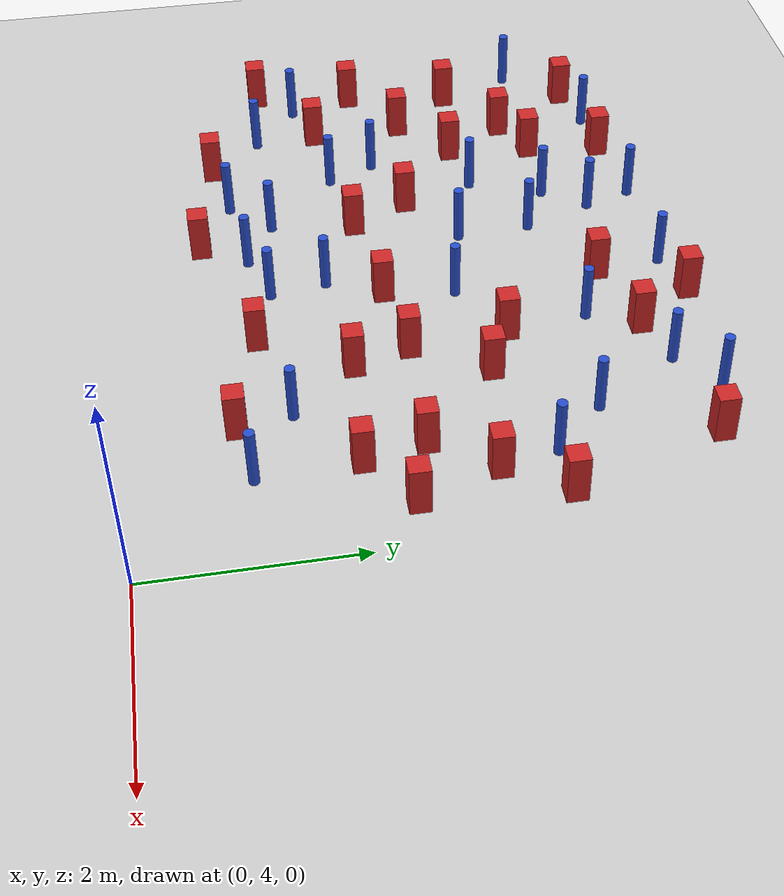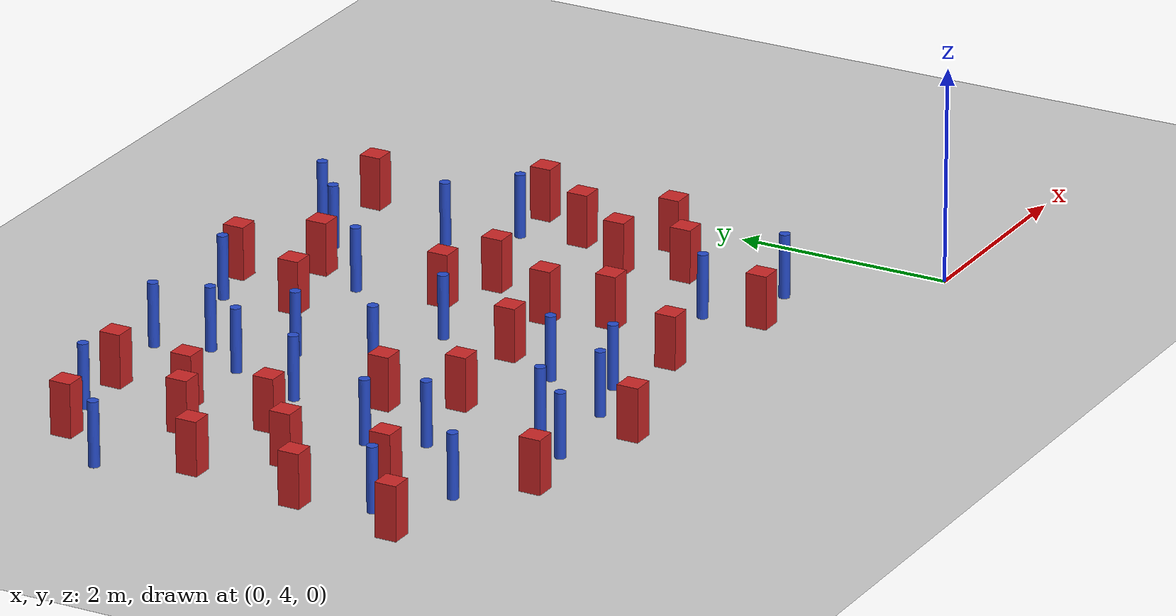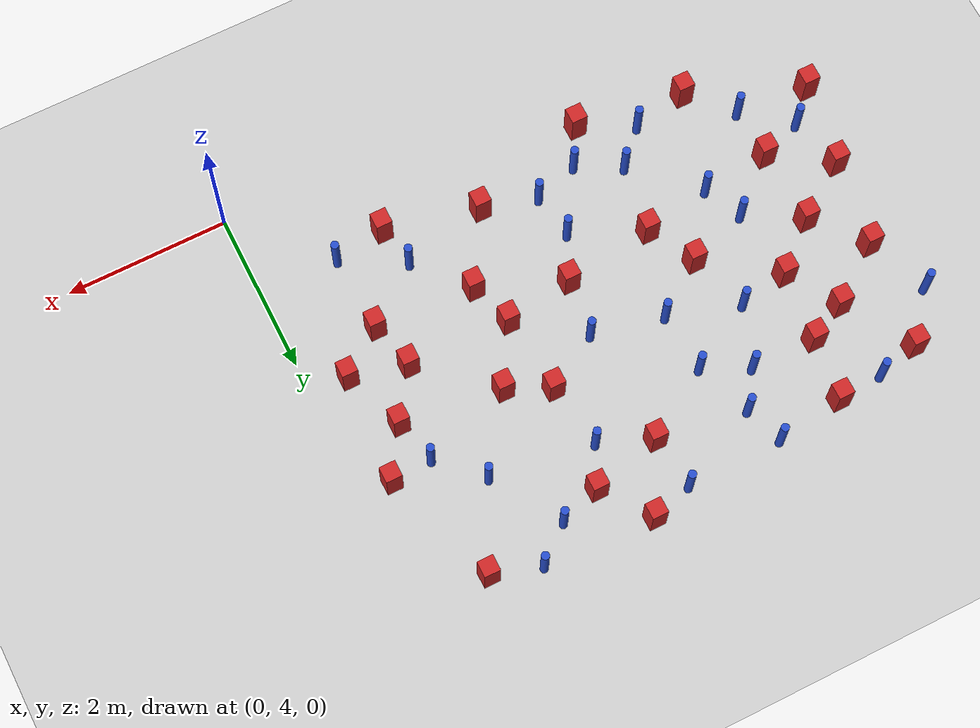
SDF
<sdf version="1.6">
 <world name="default">
  <model name="ground_plane">
   <static>1</static>
   <link name="link">
    <collision name="collision">
     <geometry><plane><normal>0 0 1</normal><size>100 100</size></plane></geometry>
     <surface><friction><ode><mu>100</mu><mu2>50</mu2></ode></friction></surface>
    </collision>
    <visual name="visual">
     <cast_shadows>0</cast_shadows>
     <geometry><plane><normal>0 0 1</normal><size>100 100</size></plane></geometry>
     <material>
      <ambient>1.0 1.0 1.0 1.0</ambient>
      <diffuse>0.8 0.8 0.8 1.0</diffuse>
      <specular>0.01 0.01 0.01 1.000000</specular>
     </material>
    </visual>
   </link>
  </model>
  <model name="pole_obstacle0">
   <static>true</static>
   <pose>-4.96490383653 7.69837994654 2.88873142074e-08 -9.90536690842e-09 4.60219948965e-07 -1.20965994976e-07</pose>
   <link name="link">
    <pose>0 0 0.3 0 -0 0</pose>
    <inertial>
     <mass>1</mass>
     <inertia><ixx>0.145833</ixx><ixy>0</ixy><ixz>0</ixz><iyy>0.145833</iyy><iyz>0</iyz><izz>0.125</izz></inertia>
    </inertial>
    <collision name="collision">
     <geometry><cylinder><radius>0.05</radius><length>.6</length></cylinder></geometry>
    </collision>
    <visual name="visual">
     <geometry><cylinder><radius>0.05</radius><length>.6</length></cylinder></geometry>
     <material>
      <script><name>Gazebo/Blue</name><uri>file://media/materials/scripts/gazebo.material</uri></script>
     </material>
    </visual>
   </link>
  </model>
  <model name="pole_obstacle5">
   <static>true</static>
   <pose>-2.64452095328 8.42757156538 2.88873142074e-08 -9.90536692318e-09 4.6021994893e-07 -1.20965994988e-07</pose>
   <link name="link">
    <pose>0 0 0.3 0 -0 0</pose>
    <inertial>
     <mass>1</mass>
     <inertia><ixx>0.145833</ixx><ixy>0</ixy><ixz>0</ixz><iyy>0.145833</iyy><iyz>0</iyz><izz>0.125</izz></inertia>
    </inertial>
    <collision name="collision">
     <geometry><cylinder><radius>0.05</radius><length>.6</length></cylinder></geometry>
    </collision>
    <visual name="visual">
     <geometry><cylinder><radius>0.05</radius><length>.6</length></cylinder></geometry>
     <material>
      <script><name>Gazebo/Blue</name><uri>file://media/materials/scripts/gazebo.material</uri></script>
     </material>
    </visual>
   </link>
  </model>
  <model name="pole_obstacle9">
   <static>true</static>
   <pose>-4.39131936763 8.86157578346 2.88873142074e-08 -9.9053668967e-09 4.60219948993e-07 -1.20965994957e-07</pose>
   <link name="link">
    <pose>0 0 0.3 0 -0 0</pose>
    <inertial>
     <mass>1</mass>
     <inertia><ixx>0.145833</ixx><ixy>0</ixy><ixz>0</ixz><iyy>0.145833</iyy><iyz>0</iyz><izz>0.125</izz></inertia>
    </inertial>
    <collision name="collision">
     <geometry><cylinder><radius>0.05</radius><length>.6</length></cylinder></geometry>
    </collision>
    <visual name="visual">
     <geometry><cylinder><radius>0.05</radius><length>.6</length></cylinder></geometry>
     <material>
      <script><name>Gazebo/Blue</name><uri>file://media/materials/scripts/gazebo.material</uri></script>
     </material>
    </visual>
   </link>
  </model>
  <model name="pole_obstacle10">
   <static>true</static>
   <pose>-4.55130574229 9.33956360959 2.88873142074e-08 -9.9053668967e-09 4.60219948993e-07 -1.20965994957e-07</pose>
   <link name="link">
    <pose>0 0 0.3 0 -0 0</pose>
    <inertial>
     <mass>1</mass>
     <inertia><ixx>0.145833</ixx><ixy>0</ixy><ixz>0</ixz><iyy>0.145833</iyy><iyz>0</iyz><izz>0.125</izz></inertia>
    </inertial>
    <collision name="collision">
     <geometry><cylinder><radius>0.05</radius><length>.6</length></cylinder></geometry>
    </collision>
    <visual name="visual">
     <geometry><cylinder><radius>0.05</radius><length>.6</length></cylinder></geometry>
     <material>
      <script><name>Gazebo/Blue</name><uri>file://media/materials/scripts/gazebo.material</uri></script>
     </material>
    </visual>
   </link>
  </model>
  <model name="square_post_obstacle10">
   <static>true</static>
   <pose>-5.60839444574 4.99346010621 8.22691968438e-08 7.22125133819e-06 -7.54495500217e-07 2.29674213826e-05</pose>
   <link name="link">
    <pose>0 0 0.25 0 -0 0</pose>
    <inertial>
     <mass>100</mass>
     <inertia>
      <ixx>0.166667</ixx>
      <ixy>0</ixy>
      <ixz>0</ixz>
      <iyy>0.166667</iyy>
      <iyz>0</iyz>
      <izz>0.166667</izz>
     </inertia>
    </inertial>
    <collision name="collision"><geometry><box><size>.2 .2 .5</size></box></geometry></collision>
    <visual name="visual">
     <geometry><box><size>.2 .2 .5</size></box></geometry>
     <material>
      <script><name>Gazebo/Red</name><uri>file://media/materials/scripts/gazebo.material</uri></script>
     </material>
    </visual>
   </link>
  </model>
  <model name="square_post_obstacle13">
   <static>true</static>
   <pose>-2.25063766883 6.10697820428 8.22691968438e-08 7.2212513382e-06 -7.54495500217e-07 2.29674213826e-05</pose>
   <link name="link">
    <pose>0 0 0.25 0 -0 0</pose>
    <inertial>
     <mass>100</mass>
     <inertia>
      <ixx>0.166667</ixx>
      <ixy>0</ixy>
      <ixz>0</ixz>
      <iyy>0.166667</iyy>
      <iyz>0</iyz>
      <izz>0.166667</izz>
     </inertia>
    </inertial>
    <collision name="collision"><geometry><box><size>.2 .2 .5</size></box></geometry></collision>
    <visual name="visual">
     <geometry><box><size>.2 .2 .5</size></box></geometry>
     <material>
      <script><name>Gazebo/Red</name><uri>file://media/materials/scripts/gazebo.material</uri></script>
     </material>
    </visual>
   </link>
  </model>
  <model name="square_post_obstacle16">
   <static>true</static>
   <pose>-5.9660888704 8.1992055869 8.22691968438e-08 7.22125133819e-06 -7.54495500217e-07 2.29674213826e-05</pose>
   <link name="link">
    <pose>0 0 0.25 0 -0 0</pose>
    <inertial>
     <mass>100</mass>
     <inertia>
      <ixx>0.166667</ixx>
      <ixy>0</ixy>
      <ixz>0</ixz>
      <iyy>0.166667</iyy>
      <iyz>0</iyz>
      <izz>0.166667</izz>
     </inertia>
    </inertial>
    <collision name="collision"><geometry><box><size>.2 .2 .5</size></box></geometry></collision>
    <visual name="visual">
     <geometry><box><size>.2 .2 .5</size></box></geometry>
     <material>
      <script><name>Gazebo/Red</name><uri>file://media/materials/scripts/gazebo.material</uri></script>
     </material>
    </visual>
   </link>
  </model>
  <model name="square_post_obstacle18">
   <static>true</static>
   <pose>-2.84131001033 9.49645642191 8.22691968438e-08 7.22125133819e-06 -7.54495500217e-07 2.29674213826e-05</pose>
   <link name="link">
    <pose>0 0 0.25 0 -0 0</pose>
    <inertial>
     <mass>100</mass>
     <inertia>
      <ixx>0.166667</ixx>
      <ixy>0</ixy>
      <ixz>0</ixz>
      <iyy>0.166667</iyy>
      <iyz>0</iyz>
      <izz>0.166667</izz>
     </inertia>
    </inertial>
    <collision name="collision"><geometry><box><size>.2 .2 .5</size></box></geometry></collision>
    <visual name="visual">
     <geometry><box><size>.2 .2 .5</size></box></geometry>
     <material>
      <script><name>Gazebo/Red</name><uri>file://media/materials/scripts/gazebo.material</uri></script>
     </material>
    </visual>
   </link>
  </model>
  <model name="pole_obstacle27">
   <static>true</static>
   <pose>-4.93310449654 5.12727231095 2.88873142074e-08 -9.90536690842e-09 4.60219948965e-07 -1.20965994976e-07</pose>
   <link name="link">
    <pose>0 0 0.3 0 -0 0</pose>
    <inertial>
     <mass>1</mass>
     <inertia><ixx>0.145833</ixx><ixy>0</ixy><ixz>0</ixz><iyy>0.145833</iyy><iyz>0</iyz><izz>0.125</izz></inertia>
    </inertial>
    <collision name="collision">
     <geometry><cylinder><radius>0.05</radius><length>.6</length></cylinder></geometry>
    </collision>
    <visual name="visual">
     <geometry><cylinder><radius>0.05</radius><length>.6</length></cylinder></geometry>
     <material>
      <script><name>Gazebo/Blue</name><uri>file://media/materials/scripts/gazebo.material</uri></script>
     </material>
    </visual>
   </link>
  </model>
  <model name="square_post_obstacle29">
   <static>true</static>
   <pose>-2.00035305223 7.37510239449 8.22691968438e-08 7.22125133819e-06 -7.54495500217e-07 2.29674213826e-05</pose>
   <link name="link">
    <pose>0 0 0.25 0 -0 0</pose>
    <inertial>
     <mass>100</mass>
     <inertia>
      <ixx>0.166667</ixx>
      <ixy>0</ixy>
      <ixz>0</ixz>
      <iyy>0.166667</iyy>
      <iyz>0</iyz>
      <izz>0.166667</izz>
     </inertia>
    </inertial>
    <collision name="collision"><geometry><box><size>.2 .2 .5</size></box></geometry></collision>
    <visual name="visual">
     <geometry><box><size>.2 .2 .5</size></box></geometry>
     <material>
      <script><name>Gazebo/Red</name><uri>file://media/materials/scripts/gazebo.material</uri></script>
     </material>
    </visual>
   </link>
  </model>
  <model name="square_post_obstacle33">
   <static>true</static>
   <pose>-3.27928689094 8.6859620101 8.22691968438e-08 7.2212513382e-06 -7.54495500217e-07 2.29674213826e-05</pose>
   <link name="link">
    <pose>0 0 0.25 0 -0 0</pose>
    <inertial>
     <mass>100</mass>
     <inertia>
      <ixx>0.166667</ixx>
      <ixy>0</ixy>
      <ixz>0</ixz>
      <iyy>0.166667</iyy>
      <iyz>0</iyz>
      <izz>0.166667</izz>
     </inertia>
    </inertial>
    <collision name="collision"><geometry><box><size>.2 .2 .5</size></box></geometry></collision>
    <visual name="visual">
     <geometry><box><size>.2 .2 .5</size></box></geometry>
     <material>
      <script><name>Gazebo/Red</name><uri>file://media/materials/scripts/gazebo.material</uri></script>
     </material>
    </visual>
   </link>
  </model>
  <model name="pole_obstacle43">
   <static>true</static>
   <pose>-4.00764167624 5.25091666088 2.88873142074e-08 -9.90536691069e-09 4.6021994896e-07 -1.20965994979e-07</pose>
   <link name="link">
    <pose>0 0 0.3 0 -0 0</pose>
    <inertial>
     <mass>1</mass>
     <inertia><ixx>0.145833</ixx><ixy>0</ixy><ixz>0</ixz><iyy>0.145833</iyy><iyz>0</iyz><izz>0.125</izz></inertia>
    </inertial>
    <collision name="collision">
     <geometry><cylinder><radius>0.05</radius><length>.6</length></cylinder></geometry>
    </collision>
    <visual name="visual">
     <geometry><cylinder><radius>0.05</radius><length>.6</length></cylinder></geometry>
     <material>
      <script><name>Gazebo/Blue</name><uri>file://media/materials/scripts/gazebo.material</uri></script>
     </material>
    </visual>
   </link>
  </model>
  <model name="pole_obstacle44">
   <static>true</static>
   <pose>-4.08551487643 7.42501927602 2.88873142074e-08 -9.90536690842e-09 4.60219948965e-07 -1.20965994976e-07</pose>
   <link name="link">
    <pose>0 0 0.3 0 -0 0</pose>
    <inertial>
     <mass>1</mass>
     <inertia><ixx>0.145833</ixx><ixy>0</ixy><ixz>0</ixz><iyy>0.145833</iyy><iyz>0</iyz><izz>0.125</izz></inertia>
    </inertial>
    <collision name="collision">
     <geometry><cylinder><radius>0.05</radius><length>.6</length></cylinder></geometry>
    </collision>
    <visual name="visual">
     <geometry><cylinder><radius>0.05</radius><length>.6</length></cylinder></geometry>
     <material>
      <script><name>Gazebo/Blue</name><uri>file://media/materials/scripts/gazebo.material</uri></script>
     </material>
    </visual>
   </link>
  </model>
  <model name="pole_obstacle45">
   <static>true</static>
   <pose>-4.68761905059 8.43181110242 2.88873142074e-08 -9.9053668967e-09 4.60219948993e-07 -1.20965994957e-07</pose>
   <link name="link">
    <pose>0 0 0.3 0 -0 0</pose>
    <inertial>
     <mass>1</mass>
     <inertia><ixx>0.145833</ixx><ixy>0</ixy><ixz>0</ixz><iyy>0.145833</iyy><iyz>0</iyz><izz>0.125</izz></inertia>
    </inertial>
    <collision name="collision">
     <geometry><cylinder><radius>0.05</radius><length>.6</length></cylinder></geometry>
    </collision>
    <visual name="visual">
     <geometry><cylinder><radius>0.05</radius><length>.6</length></cylinder></geometry>
     <material>
      <script><name>Gazebo/Blue</name><uri>file://media/materials/scripts/gazebo.material</uri></script>
     </material>
    </visual>
   </link>
  </model>
  <model name="square_post_obstacle37">
   <static>true</static>
   <pose>-2.52180636206 7.6234951903 8.22691968438e-08 7.2212513382e-06 -7.54495500217e-07 2.29674213826e-05</pose>
   <link name="link">
    <pose>0 0 0.25 0 -0 0</pose>
    <inertial>
     <mass>100</mass>
     <inertia>
      <ixx>0.166667</ixx>
      <ixy>0</ixy>
      <ixz>0</ixz>
      <iyy>0.166667</iyy>
      <iyz>0</iyz>
      <izz>0.166667</izz>
     </inertia>
    </inertial>
    <collision name="collision"><geometry><box><size>.2 .2 .5</size></box></geometry></collision>
    <visual name="visual">
     <geometry><box><size>.2 .2 .5</size></box></geometry>
     <material>
      <script><name>Gazebo/Red</name><uri>file://media/materials/scripts/gazebo.material</uri></script>
     </material>
    </visual>
   </link>
  </model>
  <model name="square_post_obstacle38">
   <static>true</static>
   <pose>-6.14481013797 7.08315656612 8.22691968438e-08 7.2212513382e-06 -7.54495500217e-07 2.29674213826e-05</pose>
   <link name="link">
    <pose>0 0 0.25 0 -0 0</pose>
    <inertial>
     <mass>100</mass>
     <inertia>
      <ixx>0.166667</ixx>
      <ixy>0</ixy>
      <ixz>0</ixz>
      <iyy>0.166667</iyy>
      <iyz>0</iyz>
      <izz>0.166667</izz>
     </inertia>
    </inertial>
    <collision name="collision"><geometry><box><size>.2 .2 .5</size></box></geometry></collision>
    <visual name="visual">
     <geometry><box><size>.2 .2 .5</size></box></geometry>
     <material>
      <script><name>Gazebo/Red</name><uri>file://media/materials/scripts/gazebo.material</uri></script>
     </material>
    </visual>
   </link>
  </model>
  <model name="pole_obstacle51">
   <static>true</static>
   <pose>-6.65193842053 5.95494044925 2.88873142074e-08 -9.90536690842e-09 4.60219948965e-07 -1.20965994976e-07</pose>
   <link name="link">
    <pose>0 0 0.3 0 -0 0</pose>
    <inertial>
     <mass>1</mass>
     <inertia><ixx>0.145833</ixx><ixy>0</ixy><ixz>0</ixz><iyy>0.145833</iyy><iyz>0</iyz><izz>0.125</izz></inertia>
    </inertial>
    <collision name="collision">
     <geometry><cylinder><radius>0.05</radius><length>.6</length></cylinder></geometry>
    </collision>
    <visual name="visual">
     <geometry><cylinder><radius>0.05</radius><length>.6</length></cylinder></geometry>
     <material>
      <script><name>Gazebo/Blue</name><uri>file://media/materials/scripts/gazebo.material</uri></script>
     </material>
    </visual>
   </link>
  </model>
  <model name="square_post_obstacle46">
   <static>true</static>
   <pose>-1.15602615086 6.6222957486 8.22691968438e-08 7.2212513382e-06 -7.54495500217e-07 2.29674213826e-05</pose>
   <link name="link">
    <pose>0 0 0.25 0 -0 0</pose>
    <inertial>
     <mass>100</mass>
     <inertia>
      <ixx>0.166667</ixx>
      <ixy>0</ixy>
      <ixz>0</ixz>
      <iyy>0.166667</iyy>
      <iyz>0</iyz>
      <izz>0.166667</izz>
     </inertia>
    </inertial>
    <collision name="collision"><geometry><box><size>.2 .2 .5</size></box></geometry></collision>
    <visual name="visual">
     <geometry><box><size>.2 .2 .5</size></box></geometry>
     <material>
      <script><name>Gazebo/Red</name><uri>file://media/materials/scripts/gazebo.material</uri></script>
     </material>
    </visual>
   </link>
  </model>
  <model name="square_post_obstacle53">
   <static>true</static>
   <pose>-0.373238762275 7.78887959573 8.22691968438e-08 7.22125133819e-06 -7.54495500217e-07 2.29674213826e-05</pose>
   <link name="link">
    <pose>0 0 0.25 0 -0 0</pose>
    <inertial>
     <mass>100</mass>
     <inertia>
      <ixx>0.166667</ixx>
      <ixy>0</ixy>
      <ixz>0</ixz>
      <iyy>0.166667</iyy>
      <iyz>0</iyz>
      <izz>0.166667</izz>
     </inertia>
    </inertial>
    <collision name="collision"><geometry><box><size>.2 .2 .5</size></box></geometry></collision>
    <visual name="visual">
     <geometry><box><size>.2 .2 .5</size></box></geometry>
     <material>
      <script><name>Gazebo/Red</name><uri>file://media/materials/scripts/gazebo.material</uri></script>
     </material>
    </visual>
   </link>
  </model>
  <model name="square_post_obstacle56">
   <static>true</static>
   <pose>-6.656817711 7.69067604971 8.22691968438e-08 7.2212513382e-06 -7.54495500217e-07 2.29674213826e-05</pose>
   <link name="link">
    <pose>0 0 0.25 0 -0 0</pose>
    <inertial>
     <mass>100</mass>
     <inertia>
      <ixx>0.166667</ixx>
      <ixy>0</ixy>
      <ixz>0</ixz>
      <iyy>0.166667</iyy>
      <iyz>0</iyz>
      <izz>0.166667</izz>
     </inertia>
    </inertial>
    <collision name="collision"><geometry><box><size>.2 .2 .5</size></box></geometry></collision>
    <visual name="visual">
     <geometry><box><size>.2 .2 .5</size></box></geometry>
     <material>
      <script><name>Gazebo/Red</name><uri>file://media/materials/scripts/gazebo.material</uri></script>
     </material>
    </visual>
   </link>
  </model>
  <model name="square_post_obstacle67">
   <static>true</static>
   <pose>-1.61292115688 4.96891000878 8.22691968438e-08 7.2212513382e-06 -7.54495500217e-07 2.29674213826e-05</pose>
   <link name="link">
    <pose>0 0 0.25 0 -0 0</pose>
    <inertial>
     <mass>100</mass>
     <inertia>
      <ixx>0.166667</ixx>
      <ixy>0</ixy>
      <ixz>0</ixz>
      <iyy>0.166667</iyy>
      <iyz>0</iyz>
      <izz>0.166667</izz>
     </inertia>
    </inertial>
    <collision name="collision"><geometry><box><size>.2 .2 .5</size></box></geometry></collision>
    <visual name="visual">
     <geometry><box><size>.2 .2 .5</size></box></geometry>
     <material>
      <script><name>Gazebo/Red</name><uri>file://media/materials/scripts/gazebo.material</uri></script>
     </material>
    </visual>
   </link>
  </model>
  <model name="pole_obstacle80">
   <static>true</static>
   <pose>-3.54181624448 5.98810086829 2.88873142074e-08 -9.90536689859e-09 4.60219948989e-07 -1.20965994961e-07</pose>
   <link name="link">
    <pose>0 0 0.3 0 -0 0</pose>
    <inertial>
     <mass>1</mass>
     <inertia><ixx>0.145833</ixx><ixy>0</ixy><ixz>0</ixz><iyy>0.145833</iyy><iyz>0</iyz><izz>0.125</izz></inertia>
    </inertial>
    <collision name="collision">
     <geometry><cylinder><radius>0.05</radius><length>.6</length></cylinder></geometry>
    </collision>
    <visual name="visual">
     <geometry><cylinder><radius>0.05</radius><length>.6</length></cylinder></geometry>
     <material>
      <script><name>Gazebo/Blue</name><uri>file://media/materials/scripts/gazebo.material</uri></script>
     </material>
    </visual>
   </link>
  </model>
  <model name="pole_obstacle87">
   <static>true</static>
   <pose>-0.975383062953 5.07444893171 2.88873142074e-08 -9.90536689644e-09 4.60219948994e-07 -1.20965994957e-07</pose>
   <link name="link">
    <pose>0 0 0.3 0 -0 0</pose>
    <inertial>
     <mass>1</mass>
     <inertia><ixx>0.145833</ixx><ixy>0</ixy><ixz>0</ixz><iyy>0.145833</iyy><iyz>0</iyz><izz>0.125</izz></inertia>
    </inertial>
    <collision name="collision">
     <geometry><cylinder><radius>0.05</radius><length>.6</length></cylinder></geometry>
    </collision>
    <visual name="visual">
     <geometry><cylinder><radius>0.05</radius><length>.6</length></cylinder></geometry>
     <material>
      <script><name>Gazebo/Blue</name><uri>file://media/materials/scripts/gazebo.material</uri></script>
     </material>
    </visual>
   </link>
  </model>
  <model name="pole_obstacle88">
   <static>true</static>
   <pose>-4.54730857434 5.53331774203 2.88873142074e-08 -9.90536690842e-09 4.60219948965e-07 -1.20965994976e-07</pose>
   <link name="link">
    <pose>0 0 0.3 0 -0 0</pose>
    <inertial>
     <mass>1</mass>
     <inertia><ixx>0.145833</ixx><ixy>0</ixy><ixz>0</ixz><iyy>0.145833</iyy><iyz>0</iyz><izz>0.125</izz></inertia>
    </inertial>
    <collision name="collision">
     <geometry><cylinder><radius>0.05</radius><length>.6</length></cylinder></geometry>
    </collision>
    <visual name="visual">
     <geometry><cylinder><radius>0.05</radius><length>.6</length></cylinder></geometry>
     <material>
      <script><name>Gazebo/Blue</name><uri>file://media/materials/scripts/gazebo.material</uri></script>
     </material>
    </visual>
   </link>
  </model>
  <model name="square_post_obstacle79">
   <static>true</static>
   <pose>-4.40799582355 6.37690749439 8.22691968438e-08 7.22125133819e-06 -7.54495500217e-07 2.29674213826e-05</pose>
   <link name="link">
    <pose>0 0 0.25 0 -0 0</pose>
    <inertial>
     <mass>100</mass>
     <inertia>
      <ixx>0.166667</ixx>
      <ixy>0</ixy>
      <ixz>0</ixz>
      <iyy>0.166667</iyy>
      <iyz>0</iyz>
      <izz>0.166667</izz>
     </inertia>
    </inertial>
    <collision name="collision"><geometry><box><size>.2 .2 .5</size></box></geometry></collision>
    <visual name="visual">
     <geometry><box><size>.2 .2 .5</size></box></geometry>
     <material>
      <script><name>Gazebo/Red</name><uri>file://media/materials/scripts/gazebo.material</uri></script>
     </material>
    </visual>
   </link>
  </model>
  <model name="square_post_obstacle81">
   <static>true</static>
   <pose>-4.71707212022 6.95609193579 8.22691968438e-08 7.22125133819e-06 -7.54495500217e-07 2.29674213826e-05</pose>
   <link name="link">
    <pose>0 0 0.25 0 -0 0</pose>
    <inertial>
     <mass>100</mass>
     <inertia>
      <ixx>0.166667</ixx>
      <ixy>0</ixy>
      <ixz>0</ixz>
      <iyy>0.166667</iyy>
      <iyz>0</iyz>
      <izz>0.166667</izz>
     </inertia>
    </inertial>
    <collision name="collision"><geometry><box><size>.2 .2 .5</size></box></geometry></collision>
    <visual name="visual">
     <geometry><box><size>.2 .2 .5</size></box></geometry>
     <material>
      <script><name>Gazebo/Red</name><uri>file://media/materials/scripts/gazebo.material</uri></script>
     </material>
    </visual>
   </link>
  </model>
  <model name="square_post_obstacle89">
   <static>true</static>
   <pose>-6.10793203646 6.14099744367 8.22691968438e-08 7.22125133819e-06 -7.54495500217e-07 2.29674213826e-05</pose>
   <link name="link">
    <pose>0 0 0.25 0 -0 0</pose>
    <inertial>
     <mass>100</mass>
     <inertia>
      <ixx>0.166667</ixx>
      <ixy>0</ixy>
      <ixz>0</ixz>
      <iyy>0.166667</iyy>
      <iyz>0</iyz>
      <izz>0.166667</izz>
     </inertia>
    </inertial>
    <collision name="collision"><geometry><box><size>.2 .2 .5</size></box></geometry></collision>
    <visual name="visual">
     <geometry><box><size>.2 .2 .5</size></box></geometry>
     <material>
      <script><name>Gazebo/Red</name><uri>file://media/materials/scripts/gazebo.material</uri></script>
     </material>
    </visual>
   </link>
  </model>
  <model name="square_post_obstacle99">
   <static>true</static>
   <pose>-0.467155363257 6.44325476049 8.22691968438e-08 7.22125133819e-06 -7.54495500217e-07 2.29674213826e-05</pose>
   <link name="link">
    <pose>0 0 0.25 0 -0 0</pose>
    <inertial>
     <mass>100</mass>
     <inertia>
      <ixx>0.166667</ixx>
      <ixy>0</ixy>
      <ixz>0</ixz>
      <iyy>0.166667</iyy>
      <iyz>0</iyz>
      <izz>0.166667</izz>
     </inertia>
    </inertial>
    <collision name="collision"><geometry><box><size>.2 .2 .5</size></box></geometry></collision>
    <visual name="visual">
     <geometry><box><size>.2 .2 .5</size></box></geometry>
     <material>
      <script><name>Gazebo/Red</name><uri>file://media/materials/scripts/gazebo.material</uri></script>
     </material>
    </visual>
   </link>
  </model>
  <model name="pole_obstacle104">
   <static>true</static>
   <pose>-5.26396981702 6.22924657028 2.88873142074e-08 -9.90536690842e-09 4.60219948965e-07 -1.20965994976e-07</pose>
   <link name="link">
    <pose>0 0 0.3 0 -0 0</pose>
    <inertial>
     <mass>1</mass>
     <inertia><ixx>0.145833</ixx><ixy>0</ixy><ixz>0</ixz><iyy>0.145833</iyy><iyz>0</iyz><izz>0.125</izz></inertia>
    </inertial>
    <collision name="collision">
     <geometry><cylinder><radius>0.05</radius><length>.6</length></cylinder></geometry>
    </collision>
    <visual name="visual">
     <geometry><cylinder><radius>0.05</radius><length>.6</length></cylinder></geometry>
     <material>
      <script><name>Gazebo/Blue</name><uri>file://media/materials/scripts/gazebo.material</uri></script>
     </material>
    </visual>
   </link>
  </model>
  <model name="square_post_obstacle100">
   <static>true</static>
   <pose>-1.01549460541 6.03403709478 8.22691968438e-08 7.2212513382e-06 -7.54495500217e-07 2.29674213826e-05</pose>
   <link name="link">
    <pose>0 0 0.25 0 -0 0</pose>
    <inertial>
     <mass>100</mass>
     <inertia>
      <ixx>0.166667</ixx>
      <ixy>0</ixy>
      <ixz>0</ixz>
      <iyy>0.166667</iyy>
      <iyz>0</iyz>
      <izz>0.166667</izz>
     </inertia>
    </inertial>
    <collision name="collision"><geometry><box><size>.2 .2 .5</size></box></geometry></collision>
    <visual name="visual">
     <geometry><box><size>.2 .2 .5</size></box></geometry>
     <material>
      <script><name>Gazebo/Red</name><uri>file://media/materials/scripts/gazebo.material</uri></script>
     </material>
    </visual>
   </link>
  </model>
  <model name="square_post_obstacle102">
   <static>true</static>
   <pose>-2.77029066422 5.24135393858 8.22691968438e-08 7.2212513382e-06 -7.54495500217e-07 2.29674213826e-05</pose>
   <link name="link">
    <pose>0 0 0.25 0 -0 0</pose>
    <inertial>
     <mass>100</mass>
     <inertia>
      <ixx>0.166667</ixx>
      <ixy>0</ixy>
      <ixz>0</ixz>
      <iyy>0.166667</iyy>
      <iyz>0</iyz>
      <izz>0.166667</izz>
     </inertia>
    </inertial>
    <collision name="collision"><geometry><box><size>.2 .2 .5</size></box></geometry></collision>
    <visual name="visual">
     <geometry><box><size>.2 .2 .5</size></box></geometry>
     <material>
      <script><name>Gazebo/Red</name><uri>file://media/materials/scripts/gazebo.material</uri></script>
     </material>
    </visual>
   </link>
  </model>
  <model name="pole_obstacle111">
   <static>true</static>
   <pose>-1.37111148797 8.25089201593 2.88873142074e-08 -9.90536690474e-09 4.60219948974e-07 -1.2096599497e-07</pose>
   <link name="link">
    <pose>0 0 0.3 0 -0 0</pose>
    <inertial>
     <mass>1</mass>
     <inertia><ixx>0.145833</ixx><ixy>0</ixy><ixz>0</ixz><iyy>0.145833</iyy><iyz>0</iyz><izz>0.125</izz></inertia>
    </inertial>
    <collision name="collision">
     <geometry><cylinder><radius>0.05</radius><length>.6</length></cylinder></geometry>
    </collision>
    <visual name="visual">
     <geometry><cylinder><radius>0.05</radius><length>.6</length></cylinder></geometry>
     <material>
      <script><name>Gazebo/Blue</name><uri>file://media/materials/scripts/gazebo.material</uri></script>
     </material>
    </visual>
   </link>
  </model>
  <model name="pole_obstacle115">
   <static>true</static>
   <pose>-5.48015971884 6.70255468638 2.88873142074e-08 -9.90536690842e-09 4.60219948965e-07 -1.20965994976e-07</pose>
   <link name="link">
    <pose>0 0 0.3 0 -0 0</pose>
    <inertial>
     <mass>1</mass>
     <inertia><ixx>0.145833</ixx><ixy>0</ixy><ixz>0</ixz><iyy>0.145833</iyy><iyz>0</iyz><izz>0.125</izz></inertia>
    </inertial>
    <collision name="collision">
     <geometry><cylinder><radius>0.05</radius><length>.6</length></cylinder></geometry>
    </collision>
    <visual name="visual">
     <geometry><cylinder><radius>0.05</radius><length>.6</length></cylinder></geometry>
     <material>
      <script><name>Gazebo/Blue</name><uri>file://media/materials/scripts/gazebo.material</uri></script>
     </material>
    </visual>
   </link>
  </model>
  <model name="pole_obstacle117">
   <static>true</static>
   <pose>-3.36020792621 9.35193041854 2.88873142074e-08 -9.90536692318e-09 4.6021994893e-07 -1.20965994988e-07</pose>
   <link name="link">
    <pose>0 0 0.3 0 -0 0</pose>
    <inertial>
     <mass>1</mass>
     <inertia><ixx>0.145833</ixx><ixy>0</ixy><ixz>0</ixz><iyy>0.145833</iyy><iyz>0</iyz><izz>0.125</izz></inertia>
    </inertial>
    <collision name="collision">
     <geometry><cylinder><radius>0.05</radius><length>.6</length></cylinder></geometry>
    </collision>
    <visual name="visual">
     <geometry><cylinder><radius>0.05</radius><length>.6</length></cylinder></geometry>
     <material>
      <script><name>Gazebo/Blue</name><uri>file://media/materials/scripts/gazebo.material</uri></script>
     </material>
    </visual>
   </link>
  </model>
  <model name="square_post_obstacle117">
   <static>true</static>
   <pose>-2.42572153409 6.65937914462 8.22691968438e-08 7.2212513382e-06 -7.54495500217e-07 2.29674213826e-05</pose>
   <link name="link">
    <pose>0 0 0.25 0 -0 0</pose>
    <inertial>
     <mass>100</mass>
     <inertia>
      <ixx>0.166667</ixx>
      <ixy>0</ixy>
      <ixz>0</ixz>
      <iyy>0.166667</iyy>
      <iyz>0</iyz>
      <izz>0.166667</izz>
     </inertia>
    </inertial>
    <collision name="collision"><geometry><box><size>.2 .2 .5</size></box></geometry></collision>
    <visual name="visual">
     <geometry><box><size>.2 .2 .5</size></box></geometry>
     <material>
      <script><name>Gazebo/Red</name><uri>file://media/materials/scripts/gazebo.material</uri></script>
     </material>
    </visual>
   </link>
  </model>
  <model name="square_post_obstacle119">
   <static>true</static>
   <pose>-0.869909542746 9.25083181522 8.22691968438e-08 7.22125133819e-06 -7.54495500217e-07 2.29674213826e-05</pose>
   <link name="link">
    <pose>0 0 0.25 0 -0 0</pose>
    <inertial>
     <mass>100</mass>
     <inertia>
      <ixx>0.166667</ixx>
      <ixy>0</ixy>
      <ixz>0</ixz>
      <iyy>0.166667</iyy>
      <iyz>0</iyz>
      <izz>0.166667</izz>
     </inertia>
    </inertial>
    <collision name="collision"><geometry><box><size>.2 .2 .5</size></box></geometry></collision>
    <visual name="visual">
     <geometry><box><size>.2 .2 .5</size></box></geometry>
     <material>
      <script><name>Gazebo/Red</name><uri>file://media/materials/scripts/gazebo.material</uri></script>
     </material>
    </visual>
   </link>
  </model>
  <model name="pole_obstacle123">
   <static>true</static>
   <pose>-3.201302053 7.23477478456 2.88873142074e-08 -9.90536692062e-09 4.60219948937e-07 -1.20965994985e-07</pose>
   <link name="link">
    <pose>0 0 0.3 0 -0 0</pose>
    <inertial>
     <mass>1</mass>
     <inertia><ixx>0.145833</ixx><ixy>0</ixy><ixz>0</ixz><iyy>0.145833</iyy><iyz>0</iyz><izz>0.125</izz></inertia>
    </inertial>
    <collision name="collision">
     <geometry><cylinder><radius>0.05</radius><length>.6</length></cylinder></geometry>
    </collision>
    <visual name="visual">
     <geometry><cylinder><radius>0.05</radius><length>.6</length></cylinder></geometry>
     <material>
      <script><name>Gazebo/Blue</name><uri>file://media/materials/scripts/gazebo.material</uri></script>
     </material>
    </visual>
   </link>
  </model>
  <model name="square_post_obstacle127">
   <static>true</static>
   <pose>-6.49059726187 9.02569230222 8.22691968438e-08 7.22125133819e-06 -7.54495500217e-07 2.29674213826e-05</pose>
   <link name="link">
    <pose>0 0 0.25 0 -0 0</pose>
    <inertial>
     <mass>100</mass>
     <inertia>
      <ixx>0.166667</ixx>
      <ixy>0</ixy>
      <ixz>0</ixz>
      <iyy>0.166667</iyy>
      <iyz>0</iyz>
      <izz>0.166667</izz>
     </inertia>
    </inertial>
    <collision name="collision"><geometry><box><size>.2 .2 .5</size></box></geometry></collision>
    <visual name="visual">
     <geometry><box><size>.2 .2 .5</size></box></geometry>
     <material>
      <script><name>Gazebo/Red</name><uri>file://media/materials/scripts/gazebo.material</uri></script>
     </material>
    </visual>
   </link>
  </model>
  <model name="square_post_obstacle134">
   <static>true</static>
   <pose>-5.49029104836 8.439986902 8.22691968438e-08 7.22125133819e-06 -7.54495500217e-07 2.29674213826e-05</pose>
   <link name="link">
    <pose>0 0 0.25 0 -0 0</pose>
    <inertial>
     <mass>100</mass>
     <inertia>
      <ixx>0.166667</ixx>
      <ixy>0</ixy>
      <ixz>0</ixz>
      <iyy>0.166667</iyy>
      <iyz>0</iyz>
      <izz>0.166667</izz>
     </inertia>
    </inertial>
    <collision name="collision"><geometry><box><size>.2 .2 .5</size></box></geometry></collision>
    <visual name="visual">
     <geometry><box><size>.2 .2 .5</size></box></geometry>
     <material>
      <script><name>Gazebo/Red</name><uri>file://media/materials/scripts/gazebo.material</uri></script>
     </material>
    </visual>
   </link>
  </model>
  <model name="pole_obstacle142">
   <static>true</static>
   <pose>-0.884013147092 7.76270005286 2.88873142074e-08 -9.90536689661e-09 4.60219948993e-07 -1.20965994957e-07</pose>
   <link name="link">
    <pose>0 0 0.3 0 -0 0</pose>
    <inertial>
     <mass>1</mass>
     <inertia><ixx>0.145833</ixx><ixy>0</ixy><ixz>0</ixz><iyy>0.145833</iyy><iyz>0</iyz><izz>0.125</izz></inertia>
    </inertial>
    <collision name="collision">
     <geometry><cylinder><radius>0.05</radius><length>.6</length></cylinder></geometry>
    </collision>
    <visual name="visual">
     <geometry><cylinder><radius>0.05</radius><length>.6</length></cylinder></geometry>
     <material>
      <script><name>Gazebo/Blue</name><uri>file://media/materials/scripts/gazebo.material</uri></script>
     </material>
    </visual>
   </link>
  </model>
  <model name="square_post_obstacle149">
   <static>true</static>
   <pose>-2.40959027589 8.9100381789 8.22691968438e-08 7.22125133819e-06 -7.54495500217e-07 2.29674213826e-05</pose>
   <link name="link">
    <pose>0 0 0.25 0 -0 0</pose>
    <inertial>
     <mass>100</mass>
     <inertia>
      <ixx>0.166667</ixx>
      <ixy>0</ixy>
      <ixz>0</ixz>
      <iyy>0.166667</iyy>
      <iyz>0</iyz>
      <izz>0.166667</izz>
     </inertia>
    </inertial>
    <collision name="collision"><geometry><box><size>.2 .2 .5</size></box></geometry></collision>
    <visual name="visual">
     <geometry><box><size>.2 .2 .5</size></box></geometry>
     <material>
      <script><name>Gazebo/Red</name><uri>file://media/materials/scripts/gazebo.material</uri></script>
     </material>
    </visual>
   </link>
  </model>
  <model name="pole_obstacle159">
   <static>true</static>
   <pose>-1.89638910515 9.08785788315 2.88873142074e-08 -9.90536690474e-09 4.60219948974e-07 -1.2096599497e-07</pose>
   <link name="link">
    <pose>0 0 0.3 0 -0 0</pose>
    <inertial>
     <mass>1</mass>
     <inertia><ixx>0.145833</ixx><ixy>0</ixy><ixz>0</ixz><iyy>0.145833</iyy><iyz>0</iyz><izz>0.125</izz></inertia>
    </inertial>
    <collision name="collision">
     <geometry><cylinder><radius>0.05</radius><length>.6</length></cylinder></geometry>
    </collision>
    <visual name="visual">
     <geometry><cylinder><radius>0.05</radius><length>.6</length></cylinder></geometry>
     <material>
      <script><name>Gazebo/Blue</name><uri>file://media/materials/scripts/gazebo.material</uri></script>
     </material>
    </visual>
   </link>
  </model>
  <model name="square_post_obstacle163">
   <static>true</static>
   <pose>-6.98962426232 5.58108127175 8.22691968438e-08 7.2212513382e-06 -7.54495500217e-07 2.29674213826e-05</pose>
   <link name="link">
    <pose>0 0 0.25 0 -0 0</pose>
    <inertial>
     <mass>100</mass>
     <inertia>
      <ixx>0.166667</ixx>
      <ixy>0</ixy>
      <ixz>0</ixz>
      <iyy>0.166667</iyy>
      <iyz>0</iyz>
      <izz>0.166667</izz>
     </inertia>
    </inertial>
    <collision name="collision"><geometry><box><size>.2 .2 .5</size></box></geometry></collision>
    <visual name="visual">
     <geometry><box><size>.2 .2 .5</size></box></geometry>
     <material>
      <script><name>Gazebo/Red</name><uri>file://media/materials/scripts/gazebo.material</uri></script>
     </material>
    </visual>
   </link>
  </model>
  <model name="pole_obstacle170">
   <static>true</static>
   <pose>-1.71747427616 5.48751633443 2.88873142074e-08 -9.90536689852e-09 4.60219948989e-07 -1.2096599496e-07</pose>
   <link name="link">
    <pose>0 0 0.3 0 -0 0</pose>
    <inertial>
     <mass>1</mass>
     <inertia><ixx>0.145833</ixx><ixy>0</ixy><ixz>0</ixz><iyy>0.145833</iyy><iyz>0</iyz><izz>0.125</izz></inertia>
    </inertial>
    <collision name="collision">
     <geometry><cylinder><radius>0.05</radius><length>.6</length></cylinder></geometry>
    </collision>
    <visual name="visual">
     <geometry><cylinder><radius>0.05</radius><length>.6</length></cylinder></geometry>
     <material>
      <script><name>Gazebo/Blue</name><uri>file://media/materials/scripts/gazebo.material</uri></script>
     </material>
    </visual>
   </link>
  </model>
  <model name="pole_obstacle175">
   <static>true</static>
   <pose>-1.46802687113 9.44811960307 2.88873142074e-08 -9.90536690474e-09 4.60219948974e-07 -1.2096599497e-07</pose>
   <link name="link">
    <pose>0 0 0.3 0 -0 0</pose>
    <inertial>
     <mass>1</mass>
     <inertia><ixx>0.145833</ixx><ixy>0</ixy><ixz>0</ixz><iyy>0.145833</iyy><iyz>0</iyz><izz>0.125</izz></inertia>
    </inertial>
    <collision name="collision">
     <geometry><cylinder><radius>0.05</radius><length>.6</length></cylinder></geometry>
    </collision>
    <visual name="visual">
     <geometry><cylinder><radius>0.05</radius><length>.6</length></cylinder></geometry>
     <material>
      <script><name>Gazebo/Blue</name><uri>file://media/materials/scripts/gazebo.material</uri></script>
     </material>
    </visual>
   </link>
  </model>
  <model name="pole_obstacle182">
   <static>true</static>
   <pose>-6.09313840711 5.50679580519 2.88873142074e-08 -9.90536690842e-09 4.60219948965e-07 -1.20965994976e-07</pose>
   <link name="link">
    <pose>0 0 0.3 0 -0 0</pose>
    <inertial>
     <mass>1</mass>
     <inertia><ixx>0.145833</ixx><ixy>0</ixy><ixz>0</ixz><iyy>0.145833</iyy><iyz>0</iyz><izz>0.125</izz></inertia>
    </inertial>
    <collision name="collision">
     <geometry><cylinder><radius>0.05</radius><length>.6</length></cylinder></geometry>
    </collision>
    <visual name="visual">
     <geometry><cylinder><radius>0.05</radius><length>.6</length></cylinder></geometry>
     <material>
      <script><name>Gazebo/Blue</name><uri>file://media/materials/scripts/gazebo.material</uri></script>
     </material>
    </visual>
   </link>
  </model>
  <model name="pole_obstacle187">
   <static>true</static>
   <pose>-4.13294640908 8.16646526233 2.88873142074e-08 -9.9053668967e-09 4.60219948993e-07 -1.20965994957e-07</pose>
   <link name="link">
    <pose>0 0 0.3 0 -0 0</pose>
    <inertial>
     <mass>1</mass>
     <inertia><ixx>0.145833</ixx><ixy>0</ixy><ixz>0</ixz><iyy>0.145833</iyy><iyz>0</iyz><izz>0.125</izz></inertia>
    </inertial>
    <collision name="collision">
     <geometry><cylinder><radius>0.05</radius><length>.6</length></cylinder></geometry>
    </collision>
    <visual name="visual">
     <geometry><cylinder><radius>0.05</radius><length>.6</length></cylinder></geometry>
     <material>
      <script><name>Gazebo/Blue</name><uri>file://media/materials/scripts/gazebo.material</uri></script>
     </material>
    </visual>
   </link>
  </model>
  <model name="square_post_obstacle203">
   <static>true</static>
   <pose>-3.28463570666 6.52842920971 8.22691968438e-08 7.2212513382e-06 -7.54495500217e-07 2.29674213826e-05</pose>
   <link name="link">
    <pose>0 0 0.25 0 -0 0</pose>
    <inertial>
     <mass>100</mass>
     <inertia>
      <ixx>0.166667</ixx>
      <ixy>0</ixy>
      <ixz>0</ixz>
      <iyy>0.166667</iyy>
      <iyz>0</iyz>
      <izz>0.166667</izz>
     </inertia>
    </inertial>
    <collision name="collision"><geometry><box><size>.2 .2 .5</size></box></geometry></collision>
    <visual name="visual">
     <geometry><box><size>.2 .2 .5</size></box></geometry>
     <material>
      <script><name>Gazebo/Red</name><uri>file://media/materials/scripts/gazebo.material</uri></script>
     </material>
    </visual>
   </link>
  </model>
  <model name="pole_obstacle194">
   <static>true</static>
   <pose>-5.9679445609 9.17393271784 2.88873142074e-08 -9.9053668967e-09 4.60219948993e-07 -1.20965994957e-07</pose>
   <link name="link">
    <pose>0 0 0.3 0 -0 0</pose>
    <inertial>
     <mass>1</mass>
     <inertia><ixx>0.145833</ixx><ixy>0</ixy><ixz>0</ixz><iyy>0.145833</iyy><iyz>0</iyz><izz>0.125</izz></inertia>
    </inertial>
    <collision name="collision">
     <geometry><cylinder><radius>0.05</radius><length>.6</length></cylinder></geometry>
    </collision>
    <visual name="visual">
     <geometry><cylinder><radius>0.05</radius><length>.6</length></cylinder></geometry>
     <material>
      <script><name>Gazebo/Blue</name><uri>file://media/materials/scripts/gazebo.material</uri></script>
     </material>
    </visual>
   </link>
  </model>
  <model name="pole_obstacle201">
   <static>true</static>
   <pose>-6.96771923657 8.46247485373 2.88873142074e-08 -9.9053668967e-09 4.60219948993e-07 -1.20965994957e-07</pose>
   <link name="link">
    <pose>0 0 0.3 0 -0 0</pose>
    <inertial>
     <mass>1</mass>
     <inertia><ixx>0.145833</ixx><ixy>0</ixy><ixz>0</ixz><iyy>0.145833</iyy><iyz>0</iyz><izz>0.125</izz></inertia>
    </inertial>
    <collision name="collision">
     <geometry><cylinder><radius>0.05</radius><length>.6</length></cylinder></geometry>
    </collision>
    <visual name="visual">
     <geometry><cylinder><radius>0.05</radius><length>.6</length></cylinder></geometry>
     <material>
      <script><name>Gazebo/Blue</name><uri>file://media/materials/scripts/gazebo.material</uri></script>
     </material>
    </visual>
   </link>
  </model>
  <model name="pole_obstacle208">
   <static>true</static>
   <pose>-3.45101915885 5.43058893809 2.88873142074e-08 -9.90536689859e-09 4.60219948989e-07 -1.20965994961e-07</pose>
   <link name="link">
    <pose>0 0 0.3 0 -0 0</pose>
    <inertial>
     <mass>1</mass>
     <inertia><ixx>0.145833</ixx><ixy>0</ixy><ixz>0</ixz><iyy>0.145833</iyy><iyz>0</iyz><izz>0.125</izz></inertia>
    </inertial>
    <collision name="collision">
     <geometry><cylinder><radius>0.05</radius><length>.6</length></cylinder></geometry>
    </collision>
    <visual name="visual">
     <geometry><cylinder><radius>0.05</radius><length>.6</length></cylinder></geometry>
     <material>
      <script><name>Gazebo/Blue</name><uri>file://media/materials/scripts/gazebo.material</uri></script>
     </material>
    </visual>
   </link>
  </model>
  <model name="square_post_obstacle218">
   <static>true</static>
   <pose>-5.39465795027 9.20462158314 8.22691968438e-08 7.22125133819e-06 -7.54495500217e-07 2.29674213826e-05</pose>
   <link name="link">
    <pose>0 0 0.25 0 -0 0</pose>
    <inertial>
     <mass>100</mass>
     <inertia>
      <ixx>0.166667</ixx>
      <ixy>0</ixy>
      <ixz>0</ixz>
      <iyy>0.166667</iyy>
      <iyz>0</iyz>
      <izz>0.166667</izz>
     </inertia>
    </inertial>
    <collision name="collision"><geometry><box><size>.2 .2 .5</size></box></geometry></collision>
    <visual name="visual">
     <geometry><box><size>.2 .2 .5</size></box></geometry>
     <material>
      <script><name>Gazebo/Red</name><uri>file://media/materials/scripts/gazebo.material</uri></script>
     </material>
    </visual>
   </link>
  </model>
  <model name="square_post_obstacle220">
   <static>true</static>
   <pose>-4.27046723769 4.79386493201 8.22691968438e-08 7.22125133819e-06 -7.54495500217e-07 2.29674213826e-05</pose>
   <link name="link">
    <pose>0 0 0.25 0 -0 0</pose>
    <inertial>
     <mass>100</mass>
     <inertia>
      <ixx>0.166667</ixx>
      <ixy>0</ixy>
      <ixz>0</ixz>
      <iyy>0.166667</iyy>
      <iyz>0</iyz>
      <izz>0.166667</izz>
     </inertia>
    </inertial>
    <collision name="collision"><geometry><box><size>.2 .2 .5</size></box></geometry></collision>
    <visual name="visual">
     <geometry><box><size>.2 .2 .5</size></box></geometry>
     <material>
      <script><name>Gazebo/Red</name><uri>file://media/materials/scripts/gazebo.material</uri></script>
     </material>
    </visual>
   </link>
  </model>
  <model name="square_post_obstacle222">
   <static>true</static>
   <pose>-6.81578070866 6.60815078893 8.22691968438e-08 7.22125133819e-06 -7.54495500217e-07 2.29674213826e-05</pose>
   <link name="link">
    <pose>0 0 0.25 0 -0 0</pose>
    <inertial>
     <mass>100</mass>
     <inertia>
      <ixx>0.166667</ixx>
      <ixy>0</ixy>
      <ixz>0</ixz>
      <iyy>0.166667</iyy>
      <iyz>0</iyz>
      <izz>0.166667</izz>
     </inertia>
    </inertial>
    <collision name="collision"><geometry><box><size>.2 .2 .5</size></box></geometry></collision>
    <visual name="visual">
     <geometry><box><size>.2 .2 .5</size></box></geometry>
     <material>
      <script><name>Gazebo/Red</name><uri>file://media/materials/scripts/gazebo.material</uri></script>
     </material>
    </visual>
   </link>
  </model>
  <model name="square_post_obstacle225">
   <static>true</static>
   <pose>-0.747747814109 7.20970002235 8.22691968438e-08 7.2212513382e-06 -7.54495500217e-07 2.29674213826e-05</pose>
   <link name="link">
    <pose>0 0 0.25 0 -0 0</pose>
    <inertial>
     <mass>100</mass>
     <inertia>
      <ixx>0.166667</ixx>
      <ixy>0</ixy>
      <ixz>0</ixz>
      <iyy>0.166667</iyy>
      <iyz>0</iyz>
      <izz>0.166667</izz>
     </inertia>
    </inertial>
    <collision name="collision"><geometry><box><size>.2 .2 .5</size></box></geometry></collision>
    <visual name="visual">
     <geometry><box><size>.2 .2 .5</size></box></geometry>
     <material>
      <script><name>Gazebo/Red</name><uri>file://media/materials/scripts/gazebo.material</uri></script>
     </material>
    </visual>
   </link>
  </model>
  <model name="square_post_obstacle230">
   <static>true</static>
   <pose>-5.57927784133 7.57942993257 8.22691968438e-08 7.2212513382e-06 -7.54495500217e-07 2.29674213826e-05</pose>
   <link name="link">
    <pose>0 0 0.25 0 -0 0</pose>
    <inertial>
     <mass>100</mass>
     <inertia>
      <ixx>0.166667</ixx>
      <ixy>0</ixy>
      <ixz>0</ixz>
      <iyy>0.166667</iyy>
      <iyz>0</iyz>
      <izz>0.166667</izz>
     </inertia>
    </inertial>
    <collision name="collision"><geometry><box><size>.2 .2 .5</size></box></geometry></collision>
    <visual name="visual">
     <geometry><box><size>.2 .2 .5</size></box></geometry>
     <material>
      <script><name>Gazebo/Red</name><uri>file://media/materials/scripts/gazebo.material</uri></script>
     </material>
    </visual>
   </link>
  </model>
 </world>
</sdf>
